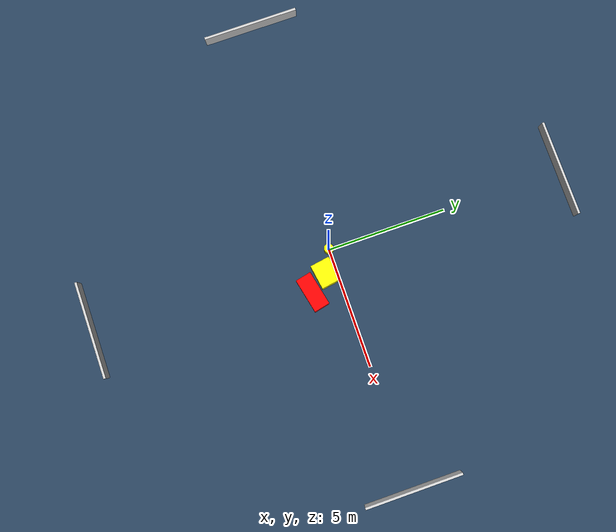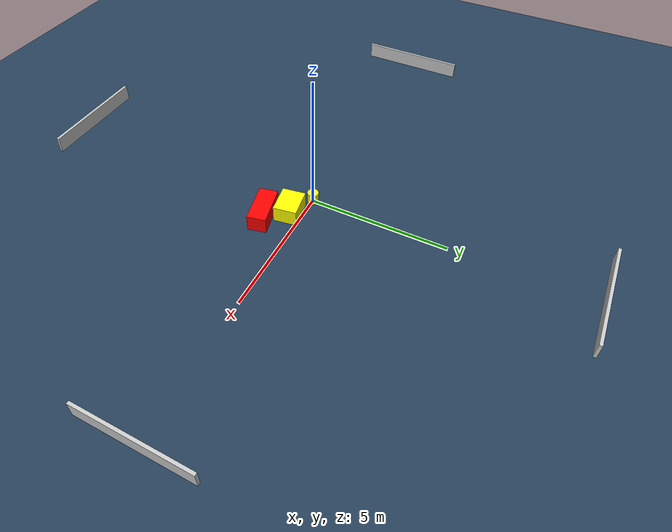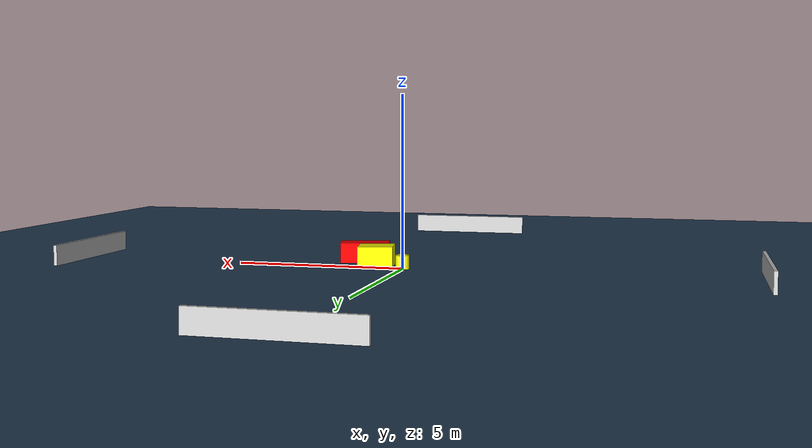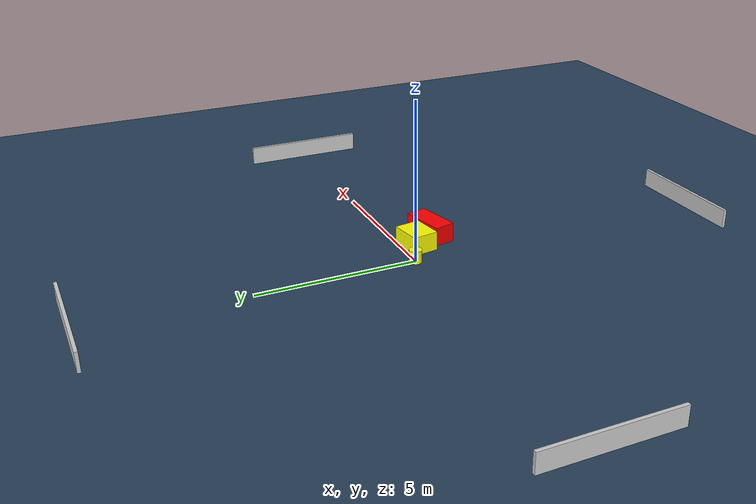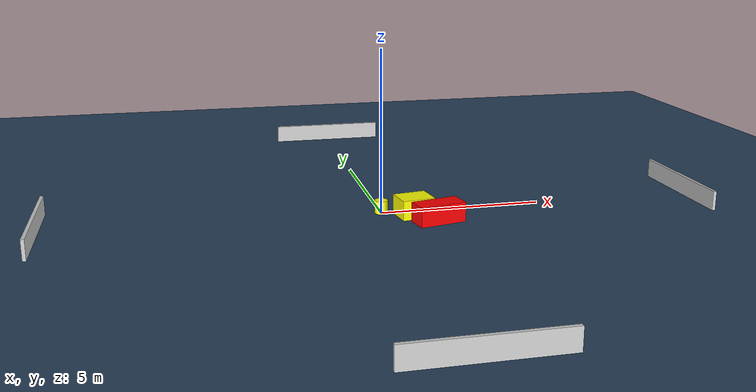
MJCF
<?xml version="1.0" ?>
<mujoco model="generated_environment">
  <option timestep="0.01" integrator="RK4" cone="elliptic"/>
  <default>
    <geom density="1"/>
  </default>
  <asset>
    <texture builtin="gradient" height="3072" name="skybox" rgb1="0.3 0.5 0.7" rgb2="0 0 0" type="skybox" width="512"/>
    <texture builtin="checker" height="300" name="groundplane" rgb1="0.2 0.3 0.4" rgb2="0.1 0.2 0.3" type="2d" width="300"/>
    <material name="groundplane" reflectance="0.2" texrepeat="5 5" texture="groundplane"/>
  </asset>
  <worldbody>
    <light dir="0 0 -1" directional="true" pos="0 0 1.5"/>
    <geom condim="3" friction="0.5 0.005 0.001" material="groundplane" name="floor" pos="0 0 0" size="0 0 0.05" type="plane"/>
    <body name="walls">
      <geom name="wall_1" condim="4" pos="-10.0 0.0 0.3" rgba="0.800000011920929 0.800000011920929 0.800000011920929 1.0" size="0.05 2.0 0.3" type="box"/>
      <geom name="wall_2" condim="4" pos="10.0 0.0 0.3" rgba="0.800000011920929 0.800000011920929 0.800000011920929 1.0" size="0.05 2.0 0.3" type="box"/>
      <geom name="wall_3" condim="4" pos="0.0 -10.0 0.3" rgba="0.800000011920929 0.800000011920929 0.800000011920929 1.0" size="2.0 0.05 0.3" type="box"/>
      <geom name="wall_4" condim="4" pos="0.0 10.0 0.3" rgba="0.800000011920929 0.800000011920929 0.800000011920929 1.0" size="2.0 0.05 0.3" type="box"/>
    </body>
    <body name="robot">
      <joint name="joint_x" type="slide" pos="0 0 0" axis="1 0 0"/>
      <joint name="joint_y" type="slide" pos="0 0 0" axis="0 1 0"/>
      <geom name="robot" type="cylinder" pos="0.0 0.0 0.2" size="0.2 0.2 0.0" mass="5.0" friction="1.0 0.005 0.0001" condim="4" rgba="1.0 1.0 0.0 1.0"/>
    </body>
    <body name="obstacle_1_movable">
      <geom name="obstacle_1_movable" condim="4" pos="0.9056974616320609 -0.4541973063910055 0.3" euler="0 0 188.92852233239205" friction="0.0 0.005 0.001" rgba="1.0 1.0 0.0 1.0" size="0.5117414078460731 0.4142771968979343 0.3" type="box" mass="0.1"/>
      <joint type="free"/>
    </body>
    <body name="obstacle_2_static">
      <geom name="obstacle_2_static" condim="4" pos="1.4656391405207594 -1.1956854640486734 0.3" euler="0 0 282.58357068767424" friction="0.0 0.005 0.001" rgba="1.0 0.0 0.0 1.0" size="0.3344662091775346 0.7277167949034544 0.3" type="box"/>
    </body>
  </worldbody>
  <actuator>
    <motor name="actuator_x" joint="joint_x" gear="1" ctrlrange="-1 1"/>
    <motor name="actuator_y" joint="joint_y" gear="1" ctrlrange="-1 1"/>
  </actuator>
</mujoco>
